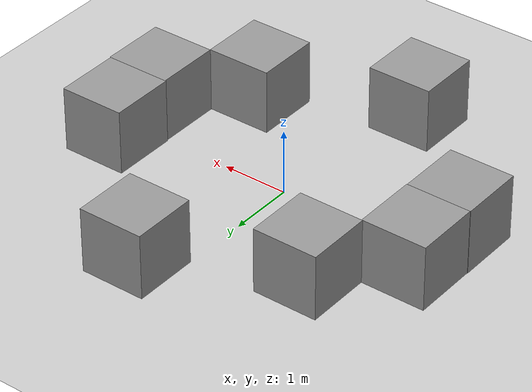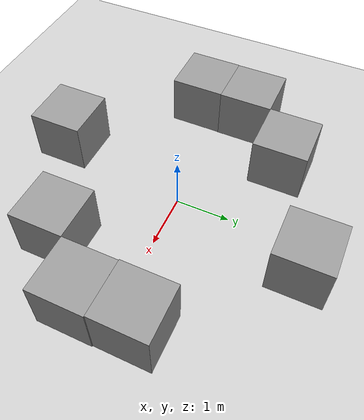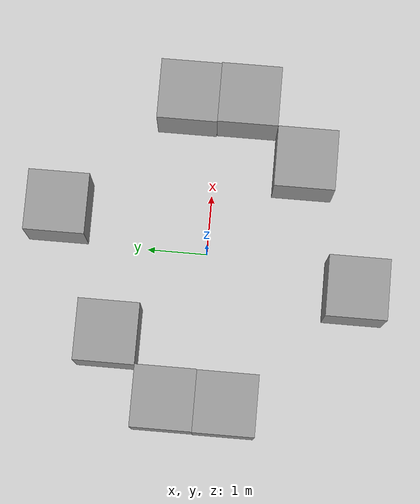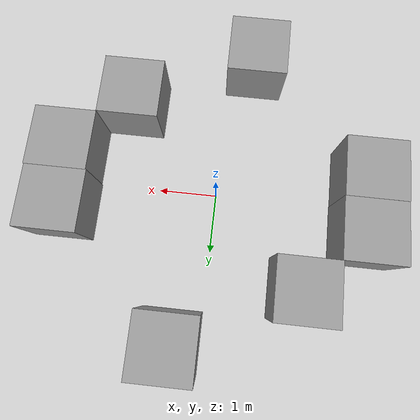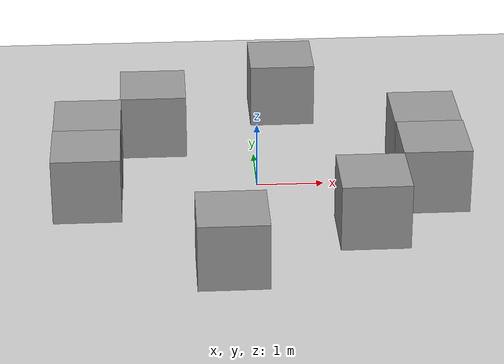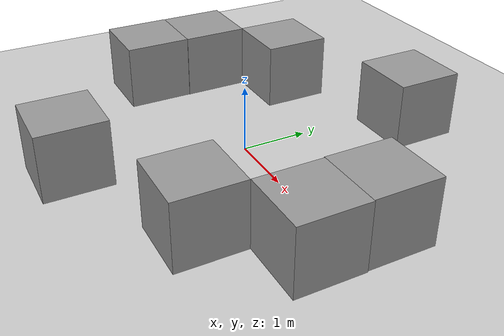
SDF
<sdf version="1.6">
 <world name="default">
  <light name="sun" type="directional">
   <pose>0 0 10 0 -0 0</pose>
   <diffuse>0.8 0.8 0.8 1</diffuse>
   <specular>0.2 0.2 0.2 1</specular>
   <attenuation>
    <range>1000</range>
    <constant>0.9</constant>
    <linear>0.01</linear>
    <quadratic>0.001</quadratic>
   </attenuation>
   <direction>-0.5 0.1 -0.9</direction>
  </light>
  <model name="ground_plane">
   <static>1</static>
   <link name="link">
    <collision name="collision">
     <geometry><plane><normal>0 0 1</normal><size>100 100</size></plane></geometry>
     <surface>
      <contact><collide_bitmask>65535</collide_bitmask></contact>
      <friction><ode><mu>100</mu><mu2>50</mu2></ode></friction>
     </surface>
    </collision>
    <visual name="visual">
     <cast_shadows>0</cast_shadows>
     <geometry><plane><normal>0 0 1</normal><size>100 100</size></plane></geometry>
     <material>
      <script><uri>file://media/materials/scripts/gazebo.material</uri><name>Gazebo/Grey</name></script>
     </material>
    </visual>
   </link>
  </model>
  <gravity>0 0 -9.8</gravity>
  <magnetic_field>6e-06 2.3e-05 -4.2e-05</magnetic_field>
  <atmosphere type="adiabatic"/>
  <physics name="default_physics" default="0" type="ode">
   <max_step_size>0.001</max_step_size>
   <real_time_factor>1</real_time_factor>
   <real_time_update_rate>1000</real_time_update_rate>
  </physics>
  <scene><ambient>0.4 0.4 0.4 1</ambient><background>0.7 0.7 0.7 1</background><shadows>1</shadows></scene>
  <audio><device>default</device></audio>
  <spherical_coordinates>
   <surface_model>EARTH_WGS84</surface_model>
   <latitude_deg>0</latitude_deg>
   <longitude_deg>0</longitude_deg>
   <elevation>0</elevation>
   <heading_deg>0</heading_deg>
  </spherical_coordinates>
  <model name="unit_box">
   <pose>2.56451 -0.497945 0.499995 0 -1e-05 5.7e-05</pose>
   <link name="link">
    <inertial>
     <mass>1</mass>
     <inertia>
      <ixx>0.166667</ixx>
      <ixy>0</ixy>
      <ixz>0</ixz>
      <iyy>0.166667</iyy>
      <iyz>0</iyz>
      <izz>0.166667</izz>
     </inertia>
    </inertial>
    <collision name="collision"><geometry><box><size>1 1 1</size></box></geometry></collision>
    <visual name="visual">
     <geometry><box><size>1 1 1</size></box></geometry>
     <material>
      <script><name>Gazebo/Grey</name><uri>file://media/materials/scripts/gazebo.material</uri></script>
     </material>
    </visual>
   </link>
  </model>
  <model name="unit_box_0">
   <pose>2.54933 0.502072 0.499995 0 1e-05 5.7e-05</pose>
   <link name="link">
    <inertial>
     <mass>1</mass>
     <inertia>
      <ixx>0.166667</ixx>
      <ixy>0</ixy>
      <ixz>0</ixz>
      <iyy>0.166667</iyy>
      <iyz>0</iyz>
      <izz>0.166667</izz>
     </inertia>
    </inertial>
    <collision name="collision"><geometry><box><size>1 1 1</size></box></geometry></collision>
    <visual name="visual">
     <geometry><box><size>1 1 1</size></box></geometry>
     <material>
      <script><name>Gazebo/Grey</name><uri>file://media/materials/scripts/gazebo.material</uri></script>
     </material>
    </visual>
   </link>
  </model>
  <model name="unit_box_1">
   <pose>1.57025 -1.50242 0.499995 -1e-05 0 0</pose>
   <link name="link">
    <inertial>
     <mass>1</mass>
     <inertia>
      <ixx>0.166667</ixx>
      <ixy>0</ixy>
      <ixz>0</ixz>
      <iyy>0.166667</iyy>
      <iyz>0</iyz>
      <izz>0.166667</izz>
     </inertia>
    </inertial>
    <collision name="collision"><geometry><box><size>1 1 1</size></box></geometry></collision>
    <visual name="visual">
     <geometry><box><size>1 1 1</size></box></geometry>
     <material>
      <script><name>Gazebo/Grey</name><uri>file://media/materials/scripts/gazebo.material</uri></script>
     </material>
    </visual>
   </link>
  </model>
  <model name="unit_box_2">
   <pose>-2.51929 -0.507792 0.499995 0 1e-05 -0.00074</pose>
   <link name="link">
    <inertial>
     <mass>1</mass>
     <inertia>
      <ixx>0.166667</ixx>
      <ixy>0</ixy>
      <ixz>0</ixz>
      <iyy>0.166667</iyy>
      <iyz>0</iyz>
      <izz>0.166667</izz>
     </inertia>
    </inertial>
    <collision name="collision"><geometry><box><size>1 1 1</size></box></geometry></collision>
    <visual name="visual">
     <geometry><box><size>1 1 1</size></box></geometry>
     <material>
      <script><name>Gazebo/Grey</name><uri>file://media/materials/scripts/gazebo.material</uri></script>
     </material>
    </visual>
   </link>
  </model>
  <model name="unit_box_3">
   <pose>-2.51172 0.492225 0.499995 -1e-05 -0 -0.000739</pose>
   <link name="link">
    <inertial>
     <mass>1</mass>
     <inertia>
      <ixx>0.166667</ixx>
      <ixy>0</ixy>
      <ixz>0</ixz>
      <iyy>0.166667</iyy>
      <iyz>0</iyz>
      <izz>0.166667</izz>
     </inertia>
    </inertial>
    <collision name="collision"><geometry><box><size>1 1 1</size></box></geometry></collision>
    <visual name="visual">
     <geometry><box><size>1 1 1</size></box></geometry>
     <material>
      <script><name>Gazebo/Grey</name><uri>file://media/materials/scripts/gazebo.material</uri></script>
     </material>
    </visual>
   </link>
  </model>
  <model name="unit_box_4">
   <pose>-1.52737 1.49208 0.5 0 0 -0.001865</pose>
   <link name="link">
    <inertial>
     <mass>1</mass>
     <inertia>
      <ixx>0.166667</ixx>
      <ixy>0</ixy>
      <ixz>0</ixz>
      <iyy>0.166667</iyy>
      <iyz>0</iyz>
      <izz>0.166667</izz>
     </inertia>
    </inertial>
    <collision name="collision"><geometry><box><size>1 1 1</size></box></geometry></collision>
    <visual name="visual">
     <geometry><box><size>1 1 1</size></box></geometry>
     <material>
      <script><name>Gazebo/Grey</name><uri>file://media/materials/scripts/gazebo.material</uri></script>
     </material>
    </visual>
   </link>
  </model>
  <model name="unit_box_5">
   <pose>-0.486771 -2.4859 0.499995 -1e-05 -0 0</pose>
   <link name="link">
    <inertial>
     <mass>1</mass>
     <inertia>
      <ixx>0.166667</ixx>
      <ixy>0</ixy>
      <ixz>0</ixz>
      <iyy>0.166667</iyy>
      <iyz>0</iyz>
      <izz>0.166667</izz>
     </inertia>
    </inertial>
    <collision name="collision"><geometry><box><size>1 1 1</size></box></geometry></collision>
    <visual name="visual">
     <geometry><box><size>1 1 1</size></box></geometry>
     <material>
      <script><name>Gazebo/Grey</name><uri>file://media/materials/scripts/gazebo.material</uri></script>
     </material>
    </visual>
   </link>
  </model>
  <model name="unit_box_6">
   <pose>0.514744 2.50012 0.5 0 -0 0</pose>
   <link name="link">
    <inertial>
     <mass>1</mass>
     <inertia>
      <ixx>0.166667</ixx>
      <ixy>0</ixy>
      <ixz>0</ixz>
      <iyy>0.166667</iyy>
      <iyz>0</iyz>
      <izz>0.166667</izz>
     </inertia>
    </inertial>
    <collision name="collision"><geometry><box><size>1 1 1</size></box></geometry></collision>
    <visual name="visual">
     <geometry><box><size>1 1 1</size></box></geometry>
     <material>
      <script><name>Gazebo/Grey</name><uri>file://media/materials/scripts/gazebo.material</uri></script>
     </material>
    </visual>
   </link>
  </model>
 </world>
</sdf>
